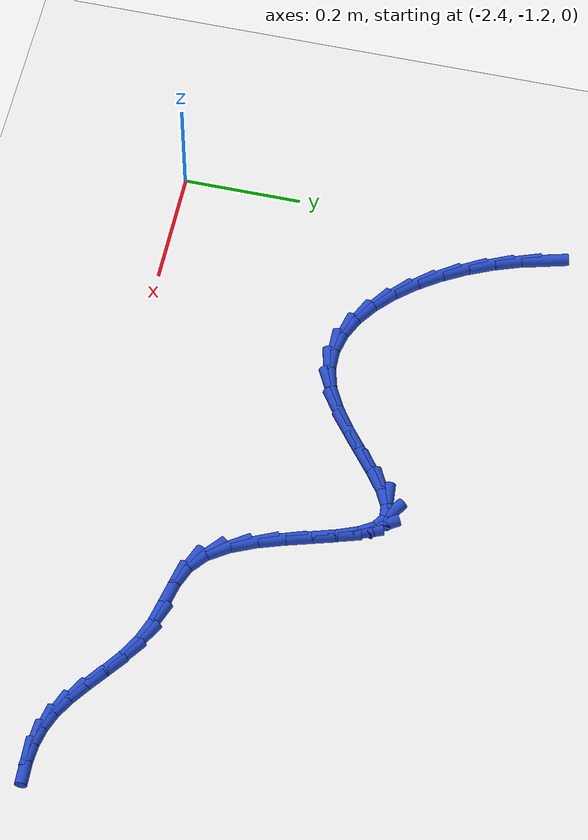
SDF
<sdf version="1.6">
 <world name="default">
  <model name="ground_plane">
   <static>1</static>
   <link name="link">
    <collision name="collision">
     <geometry><plane><normal>0 0 1</normal><size>100 100</size></plane></geometry>
     <surface><friction><ode><mu>100</mu><mu2>50</mu2></ode></friction></surface>
    </collision>
    <visual name="visual">
     <cast_shadows>0</cast_shadows>
     <geometry><plane><normal>0 0 1</normal><size>100 100</size></plane></geometry>
     <material>
      <script><uri>file://media/materials/scripts/gazebo.material</uri><name>Gazebo/WhiteGlow</name></script>
     </material>
    </visual>
   </link>
  </model>
  <model name="line">
   <link name="link_144">
    <pose>-2.3648132309750918 -0.5668055307971966 0.01 0 1.57 -1.3055836984155593</pose>
    <collision name="collision">
     <geometry><cylinder><radius>0.01</radius><length>0.08</length></cylinder></geometry>
    </collision>
    <visual name="visual">
     <material>
      <script><name>Gazebo/Blue</name><uri>file://media/materials/scripts/gazebo.material</uri></script>
     </material>
     <geometry><cylinder><radius>0.01</radius><length>0.08</length></cylinder></geometry>
    </visual>
   </link>
   <link name="link_145">
    <pose>-2.352996634090994 -0.6103111441928374 0.01 0 1.57 -1.222319982100175</pose>
    <collision name="collision">
     <geometry><cylinder><radius>0.01</radius><length>0.08</length></cylinder></geometry>
    </collision>
    <visual name="visual">
     <material>
      <script><name>Gazebo/Blue</name><uri>file://media/materials/scripts/gazebo.material</uri></script>
     </material>
     <geometry><cylinder><radius>0.01</radius><length>0.08</length></cylinder></geometry>
    </visual>
   </link>
   <link name="link_146">
    <pose>-2.337320067942884 -0.653461285415726 0.01 0 1.57 -1.140887015999485</pose>
    <collision name="collision">
     <geometry><cylinder><radius>0.01</radius><length>0.08</length></cylinder></geometry>
    </collision>
    <visual name="visual">
     <material>
      <script><name>Gazebo/Blue</name><uri>file://media/materials/scripts/gazebo.material</uri></script>
     </material>
     <geometry><cylinder><radius>0.01</radius><length>0.08</length></cylinder></geometry>
    </visual>
   </link>
   <link name="link_147">
    <pose>-2.31811267869411 -0.6953520539996119 0.01 0 1.57 -1.057215449364237</pose>
    <collision name="collision">
     <geometry><cylinder><radius>0.01</radius><length>0.08</length></cylinder></geometry>
    </collision>
    <visual name="visual">
     <material>
      <script><name>Gazebo/Blue</name><uri>file://media/materials/scripts/gazebo.material</uri></script>
     </material>
     <geometry><cylinder><radius>0.01</radius><length>0.08</length></cylinder></geometry>
    </visual>
   </link>
   <link name="link_148">
    <pose>-2.295703612508019 -0.7350795494782402 0.01 0 1.57 -0.9670725714058624</pose>
    <collision name="collision">
     <geometry><cylinder><radius>0.01</radius><length>0.08</length></cylinder></geometry>
    </collision>
    <visual name="visual">
     <material>
      <script><name>Gazebo/Blue</name><uri>file://media/materials/scripts/gazebo.material</uri></script>
     </material>
     <geometry><cylinder><radius>0.01</radius><length>0.08</length></cylinder></geometry>
    </visual>
   </link>
   <link name="link_149">
    <pose>-2.270422015547958 -0.7717398713853602 0.01 0 1.57 -0.8656078972595428</pose>
    <collision name="collision">
     <geometry><cylinder><radius>0.01</radius><length>0.08</length></cylinder></geometry>
    </collision>
    <visual name="visual">
     <material>
      <script><name>Gazebo/Blue</name><uri>file://media/materials/scripts/gazebo.material</uri></script>
     </material>
     <geometry><cylinder><radius>0.01</radius><length>0.08</length></cylinder></geometry>
    </visual>
   </link>
   <link name="link_150">
    <pose>-2.242597033977274 -0.8044291192547196 0.01 0 1.57 -0.7469588131294722</pose>
    <collision name="collision">
     <geometry><cylinder><radius>0.01</radius><length>0.08</length></cylinder></geometry>
    </collision>
    <visual name="visual">
     <material>
      <script><name>Gazebo/Blue</name><uri>file://media/materials/scripts/gazebo.material</uri></script>
     </material>
     <geometry><cylinder><radius>0.01</radius><length>0.08</length></cylinder></geometry>
    </visual>
   </link>
   <link name="link_151">
    <pose>-2.212557813959313 -0.8322433926200663 0.01 0 1.57 -0.6041447247195011</pose>
    <collision name="collision">
     <geometry><cylinder><radius>0.01</radius><length>0.08</length></cylinder></geometry>
    </collision>
    <visual name="visual">
     <material>
      <script><name>Gazebo/Blue</name><uri>file://media/materials/scripts/gazebo.material</uri></script>
     </material>
     <geometry><cylinder><radius>0.01</radius><length>0.08</length></cylinder></geometry>
    </visual>
   </link>
   <link name="link_152">
    <pose>-2.180633501657424 -0.8542787910151484 0.01 0 1.57 -0.4299474985743746</pose>
    <collision name="collision">
     <geometry><cylinder><radius>0.01</radius><length>0.08</length></cylinder></geometry>
    </collision>
    <visual name="visual">
     <material>
      <script><name>Gazebo/Blue</name><uri>file://media/materials/scripts/gazebo.material</uri></script>
     </material>
     <geometry><cylinder><radius>0.01</radius><length>0.08</length></cylinder></geometry>
    </visual>
   </link>
   <link name="link_153">
    <pose>-2.147153243234953 -0.8696314139737137 0.01 0 1.57 -0.22013101692648718</pose>
    <collision name="collision">
     <geometry><cylinder><radius>0.01</radius><length>0.08</length></cylinder></geometry>
    </collision>
    <visual name="visual">
     <material>
      <script><name>Gazebo/Blue</name><uri>file://media/materials/scripts/gazebo.material</uri></script>
     </material>
     <geometry><cylinder><radius>0.01</radius><length>0.08</length></cylinder></geometry>
    </visual>
   </link>
   <link name="link_154">
    <pose>-2.112446184855248 -0.87739736102951 0.01 0 1.57 0.020349252813567583</pose>
    <collision name="collision">
     <geometry><cylinder><radius>0.01</radius><length>0.08</length></cylinder></geometry>
    </collision>
    <visual name="visual">
     <material>
      <script><name>Gazebo/Blue</name><uri>file://media/materials/scripts/gazebo.material</uri></script>
     </material>
     <geometry><cylinder><radius>0.01</radius><length>0.08</length></cylinder></geometry>
    </visual>
   </link>
   <link name="link_155">
    <pose>-2.0768414726816533 -0.876672731716285 0.01 0 1.57 0.2726841468827959</pose>
    <collision name="collision">
     <geometry><cylinder><radius>0.01</radius><length>0.08</length></cylinder></geometry>
    </collision>
    <visual name="visual">
     <material>
      <script><name>Gazebo/Blue</name><uri>file://media/materials/scripts/gazebo.material</uri></script>
     </material>
     <geometry><cylinder><radius>0.01</radius><length>0.08</length></cylinder></geometry>
    </visual>
   </link>
   <link name="link_156">
    <pose>-2.0406685207340374 -0.8665569646051581 0.01 0 1.57 0.4873237096289972</pose>
    <collision name="collision">
     <geometry><cylinder><radius>0.01</radius><length>0.08</length></cylinder></geometry>
    </collision>
    <visual name="visual">
     <material>
      <script><name>Gazebo/Blue</name><uri>file://media/materials/scripts/gazebo.material</uri></script>
     </material>
     <geometry><cylinder><radius>0.01</radius><length>0.08</length></cylinder></geometry>
    </visual>
   </link>
   <link name="link_157">
    <pose>-2.0043498117175194 -0.8473096709651866 0.01 0 1.57 0.6143437020899033</pose>
    <collision name="collision">
     <geometry><cylinder><radius>0.01</radius><length>0.08</length></cylinder></geometry>
    </collision>
    <visual name="visual">
     <material>
      <script><name>Gazebo/Blue</name><uri>file://media/materials/scripts/gazebo.material</uri></script>
     </material>
     <geometry><cylinder><radius>0.01</radius><length>0.08</length></cylinder></geometry>
    </visual>
   </link>
   <link name="link_158">
    <pose>-1.9685369916995767 -0.8220471595210921 0.01 0 1.57 0.6753231444776902</pose>
    <collision name="collision">
     <geometry><cylinder><radius>0.01</radius><length>0.08</length></cylinder></geometry>
    </collision>
    <visual name="visual">
     <material>
      <script><name>Gazebo/Blue</name><uri>file://media/materials/scripts/gazebo.material</uri></script>
     </material>
     <geometry><cylinder><radius>0.01</radius><length>0.08</length></cylinder></geometry>
    </visual>
   </link>
   <link name="link_159">
    <pose>-1.9339163483535733 -0.7943175732418465 0.01 0 1.57 0.6831530003118407</pose>
    <collision name="collision">
     <geometry><cylinder><radius>0.01</radius><length>0.08</length></cylinder></geometry>
    </collision>
    <visual name="visual">
     <material>
      <script><name>Gazebo/Blue</name><uri>file://media/materials/scripts/gazebo.material</uri></script>
     </material>
     <geometry><cylinder><radius>0.01</radius><length>0.08</length></cylinder></geometry>
    </visual>
   </link>
   <link name="link_160">
    <pose>-1.9011741693528732 -0.7676690550964224 0.01 0 1.57 0.6303569070928202</pose>
    <collision name="collision">
     <geometry><cylinder><radius>0.01</radius><length>0.08</length></cylinder></geometry>
    </collision>
    <visual name="visual">
     <material>
      <script><name>Gazebo/Blue</name><uri>file://media/materials/scripts/gazebo.material</uri></script>
     </material>
     <geometry><cylinder><radius>0.01</radius><length>0.08</length></cylinder></geometry>
    </visual>
   </link>
   <link name="link_161">
    <pose>-1.8709967423708396 -0.7456497480537919 0.01 0 1.57 0.4748373583718115</pose>
    <collision name="collision">
     <geometry><cylinder><radius>0.01</radius><length>0.08</length></cylinder></geometry>
    </collision>
    <visual name="visual">
     <material>
      <script><name>Gazebo/Blue</name><uri>file://media/materials/scripts/gazebo.material</uri></script>
     </material>
     <geometry><cylinder><radius>0.01</radius><length>0.08</length></cylinder></geometry>
    </visual>
   </link>
   <link name="link_162">
    <pose>-1.8440703550808346 -0.7318077950829274 0.01 0 1.57 0.09180482691513961</pose>
    <collision name="collision">
     <geometry><cylinder><radius>0.01</radius><length>0.08</length></cylinder></geometry>
    </collision>
    <visual name="visual">
     <material>
      <script><name>Gazebo/Blue</name><uri>file://media/materials/scripts/gazebo.material</uri></script>
     </material>
     <geometry><cylinder><radius>0.01</radius><length>0.08</length></cylinder></geometry>
    </visual>
   </link>
   <link name="link_163">
    <pose>-1.8210812951562247 -0.729691339152802 0.01 0 1.57 -0.5778765531515323</pose>
    <collision name="collision">
     <geometry><cylinder><radius>0.01</radius><length>0.08</length></cylinder></geometry>
    </collision>
    <visual name="visual">
     <material>
      <script><name>Gazebo/Blue</name><uri>file://media/materials/scripts/gazebo.material</uri></script>
     </material>
     <geometry><cylinder><radius>0.01</radius><length>0.08</length></cylinder></geometry>
    </visual>
   </link>
   <link name="link_164">
    <pose>-1.802422950278655 -0.7418591498886672 0.01 0 1.57 -1.0149165267170939</pose>
    <collision name="collision">
     <geometry><cylinder><radius>0.01</radius><length>0.08</length></cylinder></geometry>
    </collision>
    <visual name="visual">
     <material>
      <script><name>Gazebo/Blue</name><uri>file://media/materials/scripts/gazebo.material</uri></script>
     </material>
     <geometry><cylinder><radius>0.01</radius><length>0.08</length></cylinder></geometry>
    </visual>
   </link>
   <link name="link_165">
    <pose>-1.7871693169889789 -0.7664132865656428 0.01 0 1.57 -1.1997401334294024</pose>
    <collision name="collision">
     <geometry><cylinder><radius>0.01</radius><length>0.08</length></cylinder></geometry>
    </collision>
    <visual name="visual">
     <material>
      <script><name>Gazebo/Blue</name><uri>file://media/materials/scripts/gazebo.material</uri></script>
     </material>
     <geometry><cylinder><radius>0.01</radius><length>0.08</length></cylinder></geometry>
    </visual>
   </link>
   <link name="link_166">
    <pose>-1.7740230512799937 -0.8002014743855209 0.01 0 1.57 -1.2707263084561176</pose>
    <collision name="collision">
     <geometry><cylinder><radius>0.01</radius><length>0.08</length></cylinder></geometry>
    </collision>
    <visual name="visual">
     <material>
      <script><name>Gazebo/Blue</name><uri>file://media/materials/scripts/gazebo.material</uri></script>
     </material>
     <geometry><cylinder><radius>0.01</radius><length>0.08</length></cylinder></geometry>
    </visual>
   </link>
   <link name="link_167">
    <pose>-1.7616867886696967 -0.8400713693892081 0.01 0 1.57 -1.2796858289907413</pose>
    <collision name="collision">
     <geometry><cylinder><radius>0.01</radius><length>0.08</length></cylinder></geometry>
    </collision>
    <visual name="visual">
     <material>
      <script><name>Gazebo/Blue</name><uri>file://media/materials/scripts/gazebo.material</uri></script>
     </material>
     <geometry><cylinder><radius>0.01</radius><length>0.08</length></cylinder></geometry>
    </visual>
   </link>
   <link name="link_168">
    <pose>-1.7488631646760835 -0.8828706276176114 0.01 0 1.57 -1.2402726603850678</pose>
    <collision name="collision">
     <geometry><cylinder><radius>0.01</radius><length>0.08</length></cylinder></geometry>
    </collision>
    <visual name="visual">
     <material>
      <script><name>Gazebo/Blue</name><uri>file://media/materials/scripts/gazebo.material</uri></script>
     </material>
     <geometry><cylinder><radius>0.01</radius><length>0.08</length></cylinder></geometry>
    </visual>
   </link>
   <link name="link_169">
    <pose>-1.7342548148171517 -0.9254469051116372 0.01 0 1.57 -1.146881974949298</pose>
    <collision name="collision">
     <geometry><cylinder><radius>0.01</radius><length>0.08</length></cylinder></geometry>
    </collision>
    <visual name="visual">
     <material>
      <script><name>Gazebo/Blue</name><uri>file://media/materials/scripts/gazebo.material</uri></script>
     </material>
     <geometry><cylinder><radius>0.01</radius><length>0.08</length></cylinder></geometry>
    </visual>
   </link>
   <link name="link_170">
    <pose>-1.7165643746108967 -0.9646478579121933 0.01 0 1.57 -0.9767223362479344</pose>
    <collision name="collision">
     <geometry><cylinder><radius>0.01</radius><length>0.08</length></cylinder></geometry>
    </collision>
    <visual name="visual">
     <material>
      <script><name>Gazebo/Blue</name><uri>file://media/materials/scripts/gazebo.material</uri></script>
     </material>
     <geometry><cylinder><radius>0.01</radius><length>0.08</length></cylinder></geometry>
    </visual>
   </link>
   <link name="link_171">
    <pose>-1.694494479575316 -0.9973211420601842 0.01 0 1.57 -0.6932236375700354</pose>
    <collision name="collision">
     <geometry><cylinder><radius>0.01</radius><length>0.08</length></cylinder></geometry>
    </collision>
    <visual name="visual">
     <material>
      <script><name>Gazebo/Blue</name><uri>file://media/materials/scripts/gazebo.material</uri></script>
     </material>
     <geometry><cylinder><radius>0.01</radius><length>0.08</length></cylinder></geometry>
    </visual>
   </link>
   <link name="link_172">
    <pose>-1.666767066348837 -1.0203562477993753 0.01 0 1.57 -0.3787906145777426</pose>
    <collision name="collision">
     <geometry><cylinder><radius>0.01</radius><length>0.08</length></cylinder></geometry>
    </collision>
    <visual name="visual">
     <material>
      <script><name>Gazebo/Blue</name><uri>file://media/materials/scripts/gazebo.material</uri></script>
     </material>
     <geometry><cylinder><radius>0.01</radius><length>0.08</length></cylinder></geometry>
    </visual>
   </link>
   <link name="link_173">
    <pose>-1.6334721839706734 -1.033607979843736 0.01 0 1.57 -0.22092286366807734</pose>
    <collision name="collision">
     <geometry><cylinder><radius>0.01</radius><length>0.08</length></cylinder></geometry>
    </collision>
    <visual name="visual">
     <material>
      <script><name>Gazebo/Blue</name><uri>file://media/materials/scripts/gazebo.material</uri></script>
     </material>
     <geometry><cylinder><radius>0.01</radius><length>0.08</length></cylinder></geometry>
    </visual>
   </link>
   <link name="link_174">
    <pose>-1.5969509557509445 -1.041810232596936 0.01 0 1.57 -0.2205980476013363</pose>
    <collision name="collision">
     <geometry><cylinder><radius>0.01</radius><length>0.08</length></cylinder></geometry>
    </collision>
    <visual name="visual">
     <material>
      <script><name>Gazebo/Blue</name><uri>file://media/materials/scripts/gazebo.material</uri></script>
     </material>
     <geometry><cylinder><radius>0.01</radius><length>0.08</length></cylinder></geometry>
    </visual>
   </link>
   <link name="link_175">
    <pose>-1.5597542446459045 -1.0501515005432398 0.01 0 1.57 -0.3601855672393815</pose>
    <collision name="collision">
     <geometry><cylinder><radius>0.01</radius><length>0.08</length></cylinder></geometry>
    </collision>
    <visual name="visual">
     <material>
      <script><name>Gazebo/Blue</name><uri>file://media/materials/scripts/gazebo.material</uri></script>
     </material>
     <geometry><cylinder><radius>0.01</radius><length>0.08</length></cylinder></geometry>
    </visual>
   </link>
   <link name="link_176">
    <pose>-1.5243048496177751 -1.0635022646919543 0.01 0 1.57 -0.5214615075316114</pose>
    <collision name="collision">
     <geometry><cylinder><radius>0.01</radius><length>0.08</length></cylinder></geometry>
    </collision>
    <visual name="visual">
     <material>
      <script><name>Gazebo/Blue</name><uri>file://media/materials/scripts/gazebo.material</uri></script>
     </material>
     <geometry><cylinder><radius>0.01</radius><length>0.08</length></cylinder></geometry>
    </visual>
   </link>
   <link name="link_177">
    <pose>-1.4913051282956942 -1.082460739433447 0.01 0 1.57 -0.6183028334006538</pose>
    <collision name="collision">
     <geometry><cylinder><radius>0.01</radius><length>0.08</length></cylinder></geometry>
    </collision>
    <visual name="visual">
     <material>
      <script><name>Gazebo/Blue</name><uri>file://media/materials/scripts/gazebo.material</uri></script>
     </material>
     <geometry><cylinder><radius>0.01</radius><length>0.08</length></cylinder></geometry>
    </visual>
   </link>
   <link name="link_178">
    <pose>-1.4602265296408465 -1.104568499032118 0.01 0 1.57 -0.6530761037077912</pose>
    <collision name="collision">
     <geometry><cylinder><radius>0.01</radius><length>0.08</length></cylinder></geometry>
    </collision>
    <visual name="visual">
     <material>
      <script><name>Gazebo/Blue</name><uri>file://media/materials/scripts/gazebo.material</uri></script>
     </material>
     <geometry><cylinder><radius>0.01</radius><length>0.08</length></cylinder></geometry>
    </visual>
   </link>
   <link name="link_179">
    <pose>-1.4305137989796355 -1.127300806251201 0.01 0 1.57 -0.624537687963215</pose>
    <collision name="collision">
     <geometry><cylinder><radius>0.01</radius><length>0.08</length></cylinder></geometry>
    </collision>
    <visual name="visual">
     <material>
      <script><name>Gazebo/Blue</name><uri>file://media/materials/scripts/gazebo.material</uri></script>
     </material>
     <geometry><cylinder><radius>0.01</radius><length>0.08</length></cylinder></geometry>
    </visual>
   </link>
   <link name="link_180">
    <pose>-1.4016116816384656 -1.148132923853928 0.01 0 1.57 -0.5215546795591626</pose>
    <collision name="collision">
     <geometry><cylinder><radius>0.01</radius><length>0.08</length></cylinder></geometry>
    </collision>
    <visual name="visual">
     <material>
      <script><name>Gazebo/Blue</name><uri>file://media/materials/scripts/gazebo.material</uri></script>
     </material>
     <geometry><cylinder><radius>0.01</radius><length>0.08</length></cylinder></geometry>
    </visual>
   </link>
   <link name="link_181">
    <pose>-1.3729689233298745 -1.1645918552537393 0.01 0 1.57 -0.3669182121273537</pose>
    <collision name="collision">
     <geometry><cylinder><radius>0.01</radius><length>0.08</length></cylinder></geometry>
    </collision>
    <visual name="visual">
     <material>
      <script><name>Gazebo/Blue</name><uri>file://media/materials/scripts/gazebo.material</uri></script>
     </material>
     <geometry><cylinder><radius>0.01</radius><length>0.08</length></cylinder></geometry>
    </visual>
   </link>
   <link name="link_182">
    <pose>-1.344147458531068 -1.1756685776113394 0.01 0 1.57 -0.21236343260104498</pose>
    <collision name="collision">
     <geometry><cylinder><radius>0.01</radius><length>0.08</length></cylinder></geometry>
    </collision>
    <visual name="visual">
     <material>
      <script><name>Gazebo/Blue</name><uri>file://media/materials/scripts/gazebo.material</uri></script>
     </material>
     <geometry><cylinder><radius>0.01</radius><length>0.08</length></cylinder></geometry>
    </visual>
   </link>
   <link name="link_183">
    <pose>-1.3148356004061608 -1.181988639154595 0.01 0 1.57 -0.07541775717482178</pose>
    <collision name="collision">
     <geometry><cylinder><radius>0.01</radius><length>0.08</length></cylinder></geometry>
    </collision>
    <visual name="visual">
     <material>
      <script><name>Gazebo/Blue</name><uri>file://media/materials/scripts/gazebo.material</uri></script>
     </material>
     <geometry><cylinder><radius>0.01</radius><length>0.08</length></cylinder></geometry>
    </visual>
   </link>
   <link name="link_184">
    <pose>-1.2847283105412057 -1.184263578228925 0.01 0 1.57 0.033909490945826584</pose>
    <collision name="collision">
     <geometry><cylinder><radius>0.01</radius><length>0.08</length></cylinder></geometry>
    </collision>
    <visual name="visual">
     <material>
      <script><name>Gazebo/Blue</name><uri>file://media/materials/scripts/gazebo.material</uri></script>
     </material>
     <geometry><cylinder><radius>0.01</radius><length>0.08</length></cylinder></geometry>
    </visual>
   </link>
  </model>
 </world>
</sdf>
